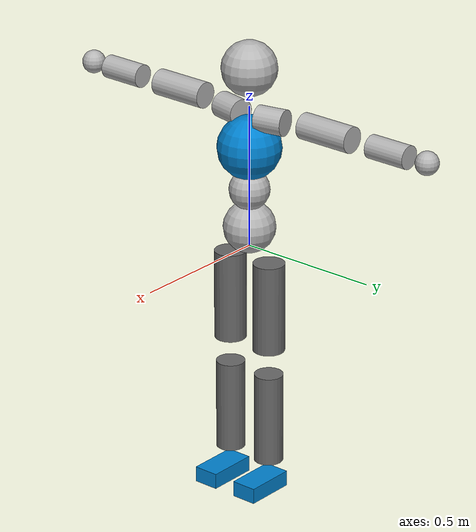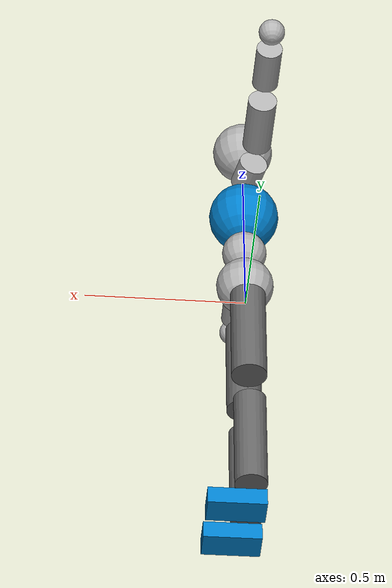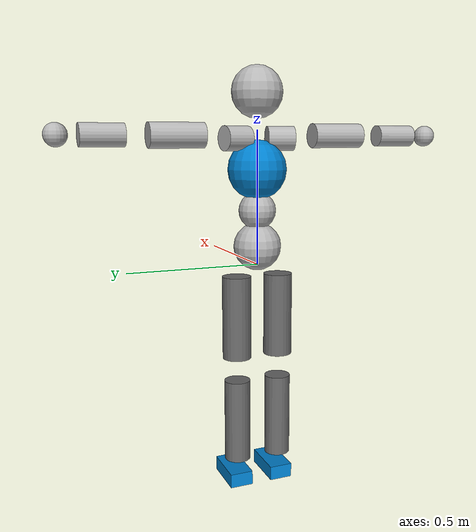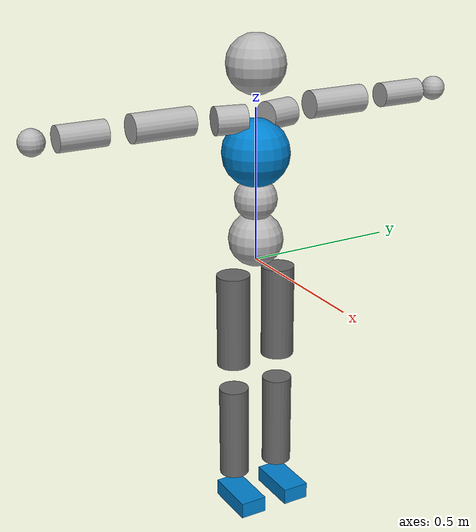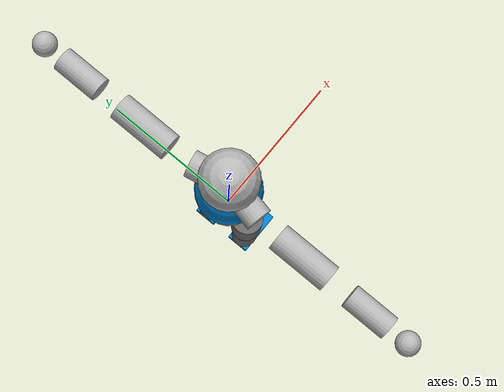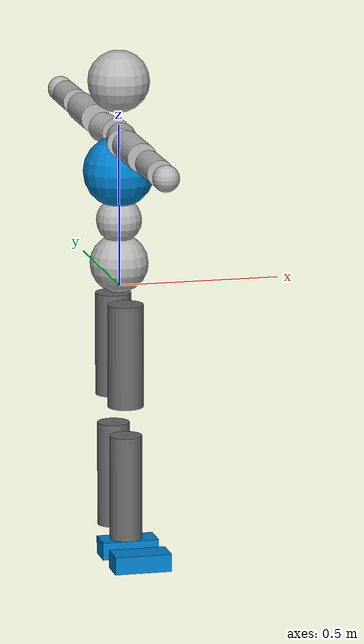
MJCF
<mujoco model="humanoid">
  <compiler angle="radian"/>

  <worldbody>
    <body name="pelvis">
      <inertial pos="0 0 0" mass="10" diaginertia="0.1 0.1 0.1"/>
      <joint name="root" type="free"/>
      <geom size="0.09" pos="0 0 0.07" contype="0" conaffinity="0" group="1" density="0" rgba="0.7 0.7 0.7 1"/>
      <geom size="0.07" pos="0 0 0.205" contype="0" conaffinity="0" group="1" density="0" rgba="0.7 0.7 0.7 1"/>
      <body name="torso_dummy_x" pos="0 0 0.236151">
        <inertial pos="0 0 0" mass="0.1" diaginertia="0.01 0.01 0.01"/>
        <joint name="abdomen_x" pos="0 0 0" axis="1 0 0" range="-1.05 1.05"/>
        <body name="torso_dummy_y">
          <inertial pos="0 0 0" mass="0.1" diaginertia="0.01 0.01 0.01"/>
          <joint name="abdomen_y" pos="0 0 0" axis="0 1 0" range="-1.05 1.57"/>
          <body name="torso">
            <inertial pos="0 0 0" mass="5" diaginertia="0.1 0.1 0.1"/>
            <joint name="abdomen_z" pos="0 0 0" axis="0 0 1" range="-1.22 1.22"/>
            <geom size="0.11" pos="0 0 0.12" contype="0" conaffinity="0" group="1" density="0" rgba="0 0.5 0.8 1"/>
            <geom size="0.045 0.05" pos="-0.011 -0.087 0.233" quat="0.703854 0.703294 -0.0705648 -0.070621" type="cylinder" contype="0" conaffinity="0" group="1" density="0" rgba="0.7 0.7 0.7 1"/>
            <geom size="0.045 0.05" pos="-0.011 0.087 0.233" quat="0.703854 -0.703294 -0.0705648 0.070621" type="cylinder" contype="0" conaffinity="0" group="1" density="0" rgba="0.7 0.7 0.7 1"/>
            <body name="head_dummy_x" pos="0 0 0.223894">
              <inertial pos="0 0 0" mass="0.1" diaginertia="0.01 0.01 0.01"/>
              <joint name="neck_x" pos="0 0 0" axis="1 0 0" range="-0.87 0.87"/>
              <body name="head_dummy_y">
                <inertial pos="0 0 0" mass="0.1" diaginertia="0.01 0.01 0.01"/>
                <joint name="neck_y" pos="0 0 0" axis="0 1 0" range="-0.7 1.05"/>
                <body name="head">
                  <inertial pos="0 0 0" mass="1" diaginertia="0.1 0.1 0.1"/>
                  <joint name="neck_z" pos="0 0 0" axis="0 0 1" range="-0.78 0.78"/>
                  <geom size="0.095" pos="0 0 0.175" contype="0" conaffinity="0" group="1" density="0" rgba="0.7 0.7 0.7 1"/>
                </body>
              </body>
            </body>
            <body name="r_shoulder_dummy_x" pos="-0.02405 -0.18311 0.2435">
              <inertial pos="0 0 0" mass="0.1" diaginertia="0.001 0.001 0.001"/>
              <joint name="right_shoulder_x" pos="0 0 0" axis="1 0 0" range="-1.9 2.44"/>
              <body name="r_shoulder_dummy_y">
                <inertial pos="0 0 0" mass="0.1" diaginertia="0.001 0.001 0.001"/>
                <joint name="right_shoulder_y" pos="0 0 0" axis="0 1 0" range="-1.57 1.57"/>
                <body name="right_upper_arm">
                  <inertial pos="0 0 0" mass="1" diaginertia="0.01 0.01 0.01"/>
                  <joint name="right_shoulder_z" pos="0 0 0" axis="0 0 1" range="-1 2.8"/>
                  <geom size="0.045 0.1" pos="0 -0.13 0" quat="0.707388 0.706825 0 0" type="cylinder" contype="0" conaffinity="0" group="1" density="0" rgba="0.7 0.7 0.7 1"/>
                  <body name="right_lower_arm" pos="0 -0.274788 0">
                    <inertial pos="0 0 0" mass="1" diaginertia="0.01 0.01 0.01"/>
                    <joint name="right_elbow" pos="0 0 0" axis="0 0 1" range="0 2.8"/>
                    <geom size="0.04 0.07625" pos="0 -0.111 0" quat="0.707388 0.706825 0 0" type="cylinder" contype="0" conaffinity="0" group="1" density="0" rgba="0.7 0.7 0.7 1"/>
                    <body name="right_hand" pos="0 -0.258947 0">
                      <inertial pos="0 0 0" mass="0.1" diaginertia="0.001 0.001 0.001"/>
                      <geom size="0.04" contype="0" conaffinity="0" group="1" density="0" rgba="0.7 0.7 0.7 1"/>
                    </body>
                  </body>
                </body>
              </body>
            </body>
            <body name="l_shoulder_dummy_x" pos="-0.02405 0.18311 0.2435">
              <inertial pos="0 0 0" mass="0.1" diaginertia="0.001 0.001 0.001"/>
              <joint name="left_shoulder_x" pos="0 0 0" axis="1 0 0" range="-2.44 1.9"/>
              <body name="l_shoulder_dummy_y">
                <inertial pos="0 0 0" mass="0.1" diaginertia="0.001 0.001 0.001"/>
                <joint name="left_shoulder_y" pos="0 0 0" axis="0 1 0" range="-1.57 1.57"/>
                <body name="left_upper_arm">
                  <inertial pos="0 0 0" mass="1" diaginertia="0.01 0.01 0.01"/>
                  <joint name="left_shoulder_z" pos="0 0 0" axis="0 0 1" range="-2.8 1"/>
                  <geom size="0.045 0.1" pos="0 0.13 0" quat="0.707388 0.706825 0 0" type="cylinder" contype="0" conaffinity="0" group="1" density="0" rgba="0.7 0.7 0.7 1"/>
                  <body name="left_lower_arm" pos="0 0.274788 0">
                    <inertial pos="0 0 0" mass="1" diaginertia="0.01 0.01 0.01"/>
                    <joint name="left_elbow" pos="0 0 0" axis="0 0 1" range="-2.8 0"/>
                    <geom size="0.04 0.07625" pos="0 0.111 0" quat="0.707388 0.706825 0 0" type="cylinder" contype="0" conaffinity="0" group="1" density="0" rgba="0.7 0.7 0.7 1"/>
                    <body name="left_hand" pos="0 0.258947 0">
                      <inertial pos="0 0 0" mass="0.1" diaginertia="0.001 0.001 0.001"/>
                      <geom size="0.04" contype="0" conaffinity="0" group="1" density="0" rgba="0.7 0.7 0.7 1"/>
                    </body>
                  </body>
                </body>
              </body>
            </body>
          </body>
        </body>
      </body>
      <body name="r_hip_dummy_x" pos="0 -0.084887 0">
        <inertial pos="0 0 0" mass="0.1" diaginertia="0.001 0.001 0.001"/>
        <joint name="right_hip_x" pos="0 0 0" axis="1 0 0" range="-1.05 0.52"/>
        <body name="r_hip_dummy_y">
          <inertial pos="0 0 0" mass="0.1" diaginertia="0.001 0.001 0.001"/>
          <joint name="right_hip_y" pos="0 0 0" axis="0 1 0" range="-2.44 1.05"/>
          <body name="right_thigh">
            <inertial pos="0 0 0" mass="4" diaginertia="0.1 0.1 0.1"/>
            <joint name="right_hip_z" pos="0 0 0" axis="0 0 1" range="-1.05 1.05"/>
            <geom size="0.055 0.16" pos="0 0 -0.2" type="cylinder" contype="0" conaffinity="0" group="1" density="0" rgba="0.4 0.4 0.4 1"/>
            <body name="right_shin" pos="0 0 -0.421546">
              <inertial pos="0 0 0" mass="3" diaginertia="0.1 0.1 0.1"/>
              <joint name="right_knee" pos="0 0 0" axis="0 1 0" range="0 2.8"/>
              <geom size="0.05 0.1625" pos="0 0 -0.1925" type="cylinder" contype="0" conaffinity="0" group="1" density="0" rgba="0.4 0.4 0.4 1"/>
              <body name="r_foot_dummy_x" pos="0 0 -0.40987">
                <inertial pos="0 0 0" mass="0.1" diaginertia="0.001 0.001 0.001"/>
                <joint name="right_ankle_x" pos="0 0 0" axis="1 0 0" range="-0.52 0.52"/>
                <body name="r_foot_dummy_y">
                  <inertial pos="0 0 0" mass="0.1" diaginertia="0.001 0.001 0.001"/>
                  <joint name="right_ankle_y" pos="0 0 0" axis="0 1 0" range="-0.96 0.96"/>
                  <body name="right_foot">
                    <inertial pos="0 0 0" mass="1" diaginertia="0.01 0.01 0.01"/>
                    <joint name="right_ankle_z" pos="0 0 0" axis="0 0 1" range="-0.7 0.7"/>
                    <geom size="0.0885 0.045 0.0275" pos="0.045 0 -0.0225" type="box" contype="0" conaffinity="0" group="1" density="0" rgba="0 0.5 0.8 1"/>
                  </body>
                </body>
              </body>
            </body>
          </body>
        </body>
      </body>
      <body name="l_hip_dummy_x" pos="0 0.084887 0">
        <inertial pos="0 0 0" mass="0.1" diaginertia="0.001 0.001 0.001"/>
        <joint name="left_hip_x" pos="0 0 0" axis="1 0 0" range="-0.52 1.05"/>
        <body name="l_hip_dummy_y">
          <inertial pos="0 0 0" mass="0.1" diaginertia="0.001 0.001 0.001"/>
          <joint name="left_hip_y" pos="0 0 0" axis="0 1 0" range="-2.44 1.05"/>
          <body name="left_thigh">
            <inertial pos="0 0 0" mass="4" diaginertia="0.1 0.1 0.1"/>
            <joint name="left_hip_z" pos="0 0 0" axis="0 0 1" range="-1.05 1.05"/>
            <geom size="0.055 0.16" pos="0 0 -0.2" type="cylinder" contype="0" conaffinity="0" group="1" density="0" rgba="0.4 0.4 0.4 1"/>
            <body name="left_shin" pos="0 0 -0.421546">
              <inertial pos="0 0 0" mass="3" diaginertia="0.1 0.1 0.1"/>
              <joint name="left_knee" pos="0 0 0" axis="0 1 0" range="0 2.8"/>
              <geom size="0.05 0.1625" pos="0 0 -0.1925" type="cylinder" contype="0" conaffinity="0" group="1" density="0" rgba="0.4 0.4 0.4 1"/>
              <body name="l_foot_dummy_x" pos="0 0 -0.40987">
                <inertial pos="0 0 0" mass="0.1" diaginertia="0.001 0.001 0.001"/>
                <joint name="left_ankle_x" pos="0 0 0" axis="1 0 0" range="-0.52 0.52"/>
                <body name="l_foot_dummy_y">
                  <inertial pos="0 0 0" mass="0.1" diaginertia="0.001 0.001 0.001"/>
                  <joint name="left_ankle_y" pos="0 0 0" axis="0 1 0" range="-0.96 0.96"/>
                  <body name="left_foot">
                    <inertial pos="0 0 0" mass="1" diaginertia="0.01 0.01 0.01"/>
                    <joint name="left_ankle_z" pos="0 0 0" axis="0 0 1" range="-0.7 0.7"/>
                    <geom size="0.0885 0.045 0.0275" pos="0.045 0 -0.0225" type="box" contype="0" conaffinity="0" group="1" density="0" rgba="0 0.5 0.8 1"/>
                  </body>
                </body>
              </body>
            </body>
          </body>
        </body>
      </body>
    </body>
  </worldbody>
</mujoco>
